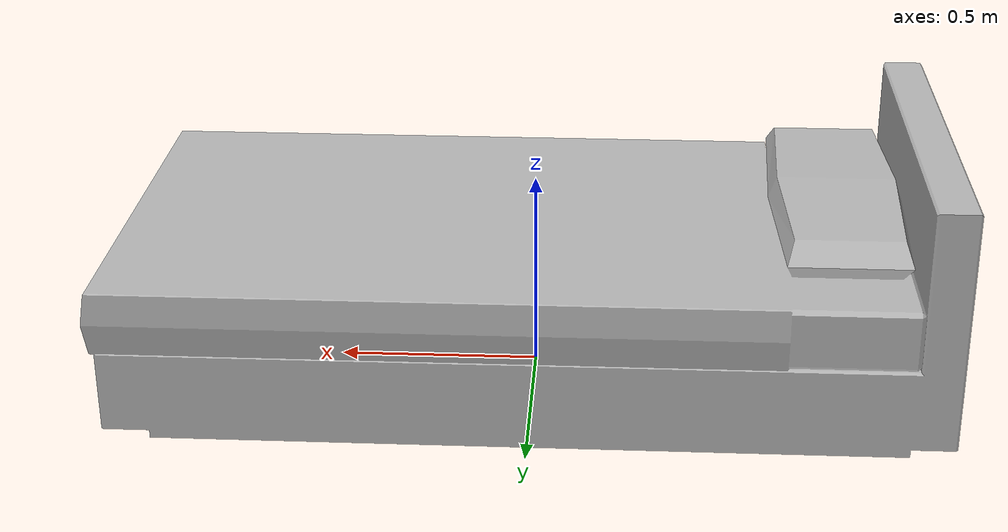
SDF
<?xml version="1.0"?>

<sdf version="1.6">
  <model name='NormalBed'>
    <link name="body">
      <pose>0 0 0 0 0 0</pose>

      <visual name="visual">
        <geometry>
          <mesh>
            <uri>model://NormalBed/meshes/bed.obj</uri>
            <scale>1 1 1</scale>
          </mesh>
        </geometry>
      </visual>

      <collision name="collision">
        <geometry>
          <mesh>
            <uri>model://NormalBed/meshes/bed.obj</uri>
            <scale>1 1 1</scale>
          </mesh>
        </geometry>
      </collision>

    </link>
  </model>
</sdf>
